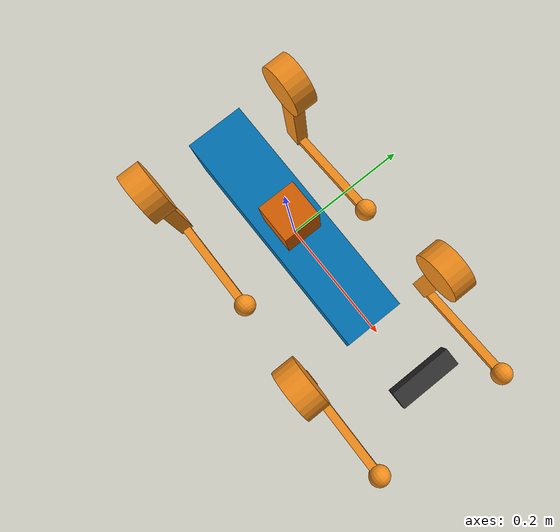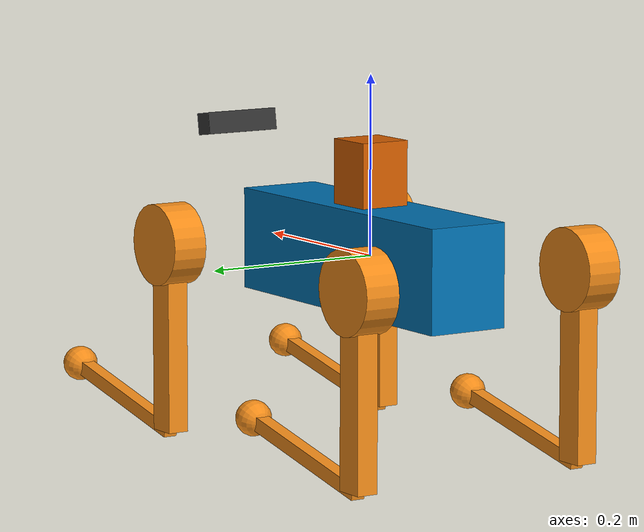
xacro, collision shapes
<?xml version="1.0"?>

<robot name="go2" xmlns:xacro="http://www.ros.org/wiki/xacro">

    <xacro:include filename="$(find go2_description)/xacro/const.xacro"/>
    <xacro:include filename="$(find go2_description)/xacro/materials.xacro"/>
    <xacro:include filename="$(find go2_description)/xacro/go2_leg.xacro"/>
    <!-- find-pkg-share -->

    <!-- Rotor related joint and link is only for demonstrate location. -->
    <!-- Actually, the rotor will rotate and the joint is not fixed. Reduction ratio should be considered. -->

    <xacro:include filename="$(find go2_description)/xacro/accessories.urdf.xacro" />
    <xacro:include filename="$(find go2_description)/xacro/camera.xacro" />

    <link name="base_link">
        <visual>
            <origin rpy="0 0 0" xyz="0 0 0"/>
            <geometry>
                <box size="0.001 0.001 0.001"/>
            </geometry>
        </visual>
    </link>

    <joint name="floating_base" type="fixed">
        <origin rpy="0 0 0" xyz="0 0 0"/>
        <parent link="base_link"/>
        <child link="trunk"/>
    </joint>

    <link name="trunk">
        <visual>
            <origin rpy="0 0 0" xyz="0 0 0"/>
            <geometry>
                <mesh filename="file://$(find go2_description)/meshes/trunk.dae" scale="1 1 1"/>
            </geometry>
        </visual>
        <collision>
            <origin rpy="0 0 0" xyz="0 0 0"/>
            <geometry>
                <box size="0.3762 0.0935 0.114"/>
            </geometry>
        </collision>
        <inertial>
            <origin rpy="0 0 0" xyz="${trunk_com_x} ${trunk_com_y} ${trunk_com_z}"/>
            <mass value="${trunk_mass}"/>
            <inertia
                ixx="${trunk_ixx}" ixy="${trunk_ixy}" ixz="${trunk_ixz}"
                iyy="${trunk_iyy}" iyz="${trunk_iyz}"
                izz="${trunk_izz}"/>
        </inertial>
    </link>

    <xacro:accessories
        base_name="base_link"
        base_length="0.3762"
        base_height="0.114"
    />

    <xacro:leg name="lf" mirror="1"  mirror_dae="True"   front_hind="1"  front_hind_dae="True"  />
    <xacro:leg name="rf" mirror="-1" mirror_dae= "False" front_hind="1"  front_hind_dae="True"  />
    <xacro:leg name="lh" mirror="1"  mirror_dae="True"   front_hind="-1" front_hind_dae="False" />
    <xacro:leg name="rh" mirror="-1" mirror_dae="False"  front_hind="-1" front_hind_dae="False" />

    <gazebo>
      <plugin name="p3d_base_controller" filename="libgazebo_ros_p3d.so">
        <ros>
            <argument>odom:=odom/ground_truth</argument>
        </ros>

        <body_name>base_link</body_name>
        <frame_name>world</frame_name>
        <update_rate>10.0</update_rate>
        <xyz_offset>0 0 0</xyz_offset>
        <rpy_offset>0 0 0</rpy_offset>
        <gaussian_noise>0.01</gaussian_noise>
    </plugin>
    </gazebo>

    <gazebo>
        <plugin filename="libgazebo_ros2_control.so" name="gazebo_ros2_control">
            <parameters>$(find go2_description)/config/go2_ros_control.yaml</parameters>
        </plugin>
    </gazebo>

</robot>

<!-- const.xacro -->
<robot name="go2" xmlns:xacro="http://www.ros.org/wiki/xacro">

    <!-- Constants for robot dimensions -->
    <xacro:property name="PI" value="3.1415926535897931"/>
    <xacro:property name="stick_mass" value="0.00001"/>

    <!-- simplified collision value -->
    <xacro:property name="trunk_width" value="0.0935"/>
    <xacro:property name="trunk_length" value="0.3762"/>
    <xacro:property name="trunk_height" value="0.114"/>
    <xacro:property name="hip_radius" value="0.046"/>
    <xacro:property name="hip_length" value="0.04"/>
    <xacro:property name="thigh_shoulder_radius" value="0.041"/>
    <xacro:property name="thigh_shoulder_length" value="0.032"/>
    <xacro:property name="thigh_width" value="0.0245"/>
    <xacro:property name="thigh_height" value="0.034"/>
    <xacro:property name="calf_width" value="0.016"/>
    <xacro:property name="calf_height" value="0.016"/>
    <xacro:property name="foot_radius" value="0.02"/>
    <xacro:property name="stick_radius" value="0.01"/>
    <xacro:property name="stick_length" value="0.2"/>

    <!-- kinematic value -->
    <xacro:property name="thigh_offset" value="0.0955"/>
    <xacro:property name="thigh_length" value="0.213"/>
    <xacro:property name="calf_length" value="0.213"/>

    <!-- leg offset from trunk center value -->
    <xacro:property name="leg_offset_x" value="0.1934"/>
    <xacro:property name="leg_offset_y" value="0.0465"/>
    <xacro:property name="hip_offset" value="0.0955"/>

    <!-- offset of link locations (left front) -->
    <xacro:property name="hip_offset_x" value="0.1934"/>
    <xacro:property name="hip_offset_y" value="0.0465"/>
    <xacro:property name="hip_offset_z" value="0.0"/>

    <xacro:property name="thigh_offset_x" value="0"/>
    <xacro:property name="thigh_offset_y" value="0.0955"/>
    <xacro:property name="thigh_offset_z" value="0.0"/>

    <xacro:property name="calf_offset_x" value="0.0"/>
    <xacro:property name="calf_offset_y" value="0.0"/>
    <xacro:property name="calf_offset_z" value="-0.213"/>

    <!-- joint limits -->
    <xacro:property name="damping" value="0.5"/>
    <xacro:property name="friction" value="0.5"/>
    <xacro:property name="hip_position_max" value="1.0472"/>
    <xacro:property name="hip_position_min" value="-1.0472"/>
    <xacro:property name="hip_velocity_max" value="1.5"/>
    <xacro:property name="hip_torque_max" value="23.7"/>
    <xacro:property name="thigh_position_max" value="3.4907"/>
    <xacro:property name="thigh_position_min" value="-1.5708"/>
    <xacro:property name="thigh_velocity_max" value="1.5"/>
    <xacro:property name="thigh_torque_max" value="23.7"/>
    <xacro:property name="calf_position_max" value="-0.83776"/>
    <xacro:property name="calf_position_min" value="-2.7227"/>
    <xacro:property name="calf_velocity_max" value="1.5"/>
    <xacro:property name="calf_torque_max" value="25"/>

    <!-- dynamics inertial value -->
    <!-- trunk -->
    <xacro:property name="trunk_mass" value="6.921"/>
    <xacro:property name="trunk_com_x" value="0.021112"/>
    <xacro:property name="trunk_com_y" value="0.00"/>
    <xacro:property name="trunk_com_z" value="-0.005366"/>
    <xacro:property name="trunk_ixx" value="0.01683"/>
    <xacro:property name="trunk_ixy" value="0.0"/>
    <xacro:property name="trunk_ixz" value="0.0"/>
    <xacro:property name="trunk_iyy" value="0.044483"/>
    <xacro:property name="trunk_iyz" value="0"/>
    <xacro:property name="trunk_izz" value="0.055683"/>
    <!-- hip (left front) -->
    <xacro:property name="hip_mass" value="0.678"/>
    <xacro:property name="hip_com_x" value="-0.0054"/>
    <xacro:property name="hip_com_y" value="0.00194"/>
    <xacro:property name="hip_com_z" value="-0.000105"/>
    <xacro:property name="hip_ixx" value="0.00048"/>
    <xacro:property name="hip_ixy" value="0.0"/>
    <xacro:property name="hip_ixz" value="0.0"/>
    <xacro:property name="hip_iyy" value="0.000884"/>
    <xacro:property name="hip_iyz" value="0.0"/>
    <xacro:property name="hip_izz" value="0.000596"/>

    <!-- thigh -->
    <xacro:property name="thigh_mass" value="0.552"/>
    <xacro:property name="thigh_com_x" value="-0.00374"/>
    <xacro:property name="thigh_com_y" value="-0.0223"/>
    <xacro:property name="thigh_com_z" value="-0.0327"/>
    <xacro:property name="thigh_ixx" value="0.00584"/>
    <xacro:property name="thigh_ixy" value="0.0"/>
    <xacro:property name="thigh_ixz" value="-0.0"/>
    <xacro:property name="thigh_iyy" value="0.0011"/>
    <xacro:property name="thigh_iyz" value="0.0"/>
    <xacro:property name="thigh_izz" value="3.29E-05"/>

    <!-- calf -->
    <xacro:property name="calf_mass" value="0.125"/>
    <xacro:property name="calf_com_x" value="0.00548"/>
    <xacro:property name="calf_com_y" value="-0.000975"/>
    <xacro:property name="calf_com_z" value="-0.115"/>
    <xacro:property name="calf_ixx" value="0.00108"/>
    <xacro:property name="calf_ixy" value="0"/>
    <xacro:property name="calf_ixz" value="0"/>
    <xacro:property name="calf_iyy" value="0.0011"/>
    <xacro:property name="calf_iyz" value="0"/>
    <xacro:property name="calf_izz" value="3.29E-05"/>

    <!-- foot -->
    <xacro:property name="foot_mass" value="0.006"/>

</robot>

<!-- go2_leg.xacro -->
<robot name="go2" xmlns:xacro="http://www.ros.org/wiki/xacro">

    <xacro:macro name="leg" params="name mirror mirror_dae front_hind front_hind_dae">

        <joint name="${name}_hip_joint" type="revolute">
            <xacro:if value="${(mirror_dae == False) and (front_hind_dae == True)}">
                <origin rpy="0 0 0" xyz="${leg_offset_x} ${-leg_offset_y} 0"/>
            </xacro:if>
            <xacro:if value="${(mirror_dae == True) and (front_hind_dae == True)}">
                <origin rpy="0 0 0" xyz="${leg_offset_x} ${leg_offset_y} 0"/>
            </xacro:if>
            <xacro:if value="${(mirror_dae == False) and (front_hind_dae == False)}">
                <origin rpy="0 0 0" xyz="${-leg_offset_x} ${-leg_offset_y} 0"/>
            </xacro:if>
            <xacro:if value="${(mirror_dae == True) and (front_hind_dae == False)}">
                <origin rpy="0 0 0" xyz="${-leg_offset_x} ${leg_offset_y} 0"/>
            </xacro:if>

            <parent link="trunk"/>
            <child link="${name}_hip_link"/>

            <axis xyz="1 0 0"/>
            <dynamics damping="${damping}" friction="${friction}"/>

            <xacro:if value="${(mirror_dae == True)}">
                <limit effort="${hip_torque_max}" velocity="${hip_velocity_max}" lower="${hip_position_min}" upper="${hip_position_max}"/>
            </xacro:if>
            <xacro:if value="${(mirror_dae == False)}">
                <limit effort="${hip_torque_max}" velocity="${hip_velocity_max}" lower="${-hip_position_max}" upper="${-hip_position_min}"/>
            </xacro:if>
        </joint>

        <link name="${name}_hip_link">
            <visual>
                <xacro:if value="${(mirror_dae == True) and (front_hind_dae == True)}">
                    <origin rpy="0 0 0" xyz="0 0 0"/>
                </xacro:if>
                <xacro:if value="${(mirror_dae == False) and (front_hind_dae == True)}">
                    <origin rpy="${PI} 0 0" xyz="0 0 0"/>
                </xacro:if>
                <xacro:if value="${(mirror_dae == True) and (front_hind_dae == False)}">
                    <origin rpy="0 ${PI} 0" xyz="0 0 0"/>
                </xacro:if>
                <xacro:if value="${(mirror_dae == False) and (front_hind_dae == False)}">
                    <origin rpy="${PI} ${PI} 0" xyz="0 0 0"/>
                </xacro:if>
                <geometry>
                    <mesh filename="file://$(find go2_description)/meshes/hip.dae" scale="1 1 1"/>
                </geometry>
                <material name="orange"/>
                <material>
                    <color rgba="${255/255} ${108/255} ${10/255} 1.0"/>
                </material>
            </visual>
            <collision>
                <origin rpy="${PI/2.0} 0 0" xyz="0 ${hip_offset*mirror} 0"/>
                <geometry>
                    <cylinder length="${hip_length}" radius="${hip_radius}"/>
                </geometry>
            </collision>
            <inertial>
                <origin rpy="0 0 0" xyz="${hip_com_x*front_hind} ${hip_com_y*mirror} ${hip_com_z}"/>
                <mass value="${hip_mass}"/>
                <inertia
                    ixx="${hip_ixx}" ixy="${hip_ixy*mirror*front_hind}" ixz="${hip_ixz*front_hind}"
                    iyy="${hip_iyy}" iyz="${hip_iyz*mirror}"
                    izz="${hip_izz}"/>
            </inertial>
        </link>

        <joint name="${name}_upper_leg_joint" type="revolute">
            <origin rpy="0 0 0" xyz="0 ${thigh_offset*mirror} 0"/>
            <parent link="${name}_hip_link"/>
            <child link="${name}_upper_leg_link"/>
            <axis xyz="0 1 0"/>
            <dynamics damping="${damping}" friction="${friction}"/>
            <limit effort="${thigh_torque_max}" velocity="${thigh_velocity_max}" lower="${thigh_position_min}" upper="${thigh_position_max}"/>
        </joint>

        <link name="${name}_upper_leg_link">
            <visual>
                <origin rpy="0 0 0" xyz="0 0 0"/>
                <geometry>
                    <xacro:if value="${mirror_dae == True}">
                        <mesh filename="file://$(find go2_description)/meshes/thigh.dae" scale="1 1 1"/>
                    </xacro:if>
                    <xacro:if value="${mirror_dae == False}">
                        <mesh filename="file://$(find go2_description)/meshes/thigh_mirror.dae" scale="1 1 1"/>
                    </xacro:if>
                </geometry>
                <material name="orange"/>
            </visual>
            <collision>
                <origin rpy="0 ${PI/2.0} 0" xyz="0 0 ${-thigh_length/2.0}"/>
                <geometry>
                    <box size="${thigh_length} ${thigh_width} ${thigh_height}"/>
                </geometry>
            </collision>
            <inertial>
                <origin rpy="0 0 0" xyz="${thigh_com_x} ${thigh_com_y*mirror} ${thigh_com_z}"/>
                <xacro:if value="${front_hind == -1}">
                    <mass value=".5"/>
                </xacro:if>
                <xacro:if value="${front_hind == 1}">
                    <mass value="${thigh_mass}"/>
                </xacro:if>
                <inertia
                    ixx="${thigh_ixx}" ixy="${thigh_ixy*mirror}" ixz="${thigh_ixz}"
                    iyy="${thigh_iyy}" iyz="${thigh_iyz*mirror}"
                    izz="${thigh_izz}"/>
            </inertial>
        </link>

        <joint name="${name}_lower_leg_joint" type="revolute">
            <origin rpy="0 0 0" xyz="0 0 ${-thigh_length}"/>
            <parent link="${name}_upper_leg_link"/>
            <child link="${name}_lower_leg_link"/>
            <axis xyz="0 1 0"/>
            <dynamics damping="${damping}" friction="${friction}"/>
            <limit effort="${calf_torque_max}" velocity="${calf_velocity_max}" lower="${calf_position_min}" upper="${calf_position_max}"/>
        </joint>

        <link name="${name}_lower_leg_link">
            <visual>
                <origin rpy="0 0 0" xyz="0 0 0"/>
                <geometry>
                    <mesh filename="file://$(find go2_description)/meshes/calf.dae" scale="1 1 1"/>
                </geometry>
                <material name="orange"/>
            </visual>
            <collision>
                <origin rpy="0 ${PI/2.0} 0" xyz="0 0 ${-calf_length/2.0}"/>
                <geometry>
                    <box size="${calf_length} ${calf_width} ${calf_height}"/>
                </geometry>
            </collision>
            <inertial>
                <origin rpy="0 0 0" xyz="${calf_com_x} ${calf_com_y} ${calf_com_z}"/>
                <mass value="${calf_mass}"/>
                <inertia
                    ixx="${calf_ixx}" ixy="${calf_ixy}" ixz="${calf_ixz}"
                    iyy="${calf_iyy}" iyz="${calf_iyz}"
                    izz="${calf_izz}"/>
            </inertial>
        </link>

        <joint name="${name}_foot_joint" type="fixed">0
            <origin rpy="0 0 0" xyz="0 0 ${-(calf_length)}"/>
            <parent link="${name}_lower_leg_link"/>
            <child link="${name}_foot_link"/>
        </joint>

        <link name="${name}_foot_link">
            <visual>
                <origin rpy="0 0 0" xyz="0 0 0"/>
                <geometry>
                    <sphere radius="${foot_radius-0.01}"/>
                </geometry>
                <material name="orange"/>
            </visual>
            <collision>
                <origin rpy="0 0 0" xyz="0 0 0"/>
                <geometry>
                    <sphere radius="${foot_radius}"/>
                </geometry>
            </collision>
            <inertial>
                <mass value="${foot_mass}"/>
                <inertia
                    ixx="${(2*foot_mass)/5.0*(foot_radius*foot_radius)}" ixy="0.0" ixz="0.0"
                    iyy="${(2*foot_mass)/5.0*(foot_radius*foot_radius)}" iyz="0.0"
                    izz="${(2*foot_mass)/5.0*(foot_radius*foot_radius)}"/>
            </inertial>
        </link>

        <ros2_control name="${name}" type="system">
            <hardware>
                <plugin>gazebo_ros2_control/GazeboSystem</plugin>
            </hardware>
            <joint name="${name}_hip_joint">
                <command_interface name="effort"/>
                <state_interface name="position"/>
                <state_interface name="velocity"/>
            </joint>
            <joint name="${name}_upper_leg_joint">
                <command_interface name="effort"/>
                <state_interface name="position"/>
                <state_interface name="velocity"/>
            </joint>
            <joint name="${name}_lower_leg_joint">
                <command_interface name="effort"/>
                <state_interface name="position"/>
                <state_interface name="velocity"/>
            </joint>
        </ros2_control>

        <!-- RR leg -->
        <gazebo reference="${name}_hip_link">
            <mu1>0.2</mu1>
            <mu2>0.2</mu2>
        </gazebo>
        <gazebo reference="${name}_upper_leg_link">
            <mu1>0.2</mu1>
            <mu2>0.2</mu2>
            <self_collide>1</self_collide>
            <kp  value="1000000.0"/>
            <kd  value="1.0"/>
        </gazebo>
        <gazebo reference="${name}_lower_leg_link">
            <mu1>0.2</mu1>
            <mu2>0.2</mu2>
            <self_collide>1</self_collide>
        </gazebo>
        <gazebo reference="${name}_foot_link">
            <kp>10000000000.0</kp>
            <kd>100.0</kd>
            <mu1>0.8</mu1>
            <mu2>0.8</mu2>
            <minDepth>0.05</minDepth>
            <material>Gazebo/FlatBlack</material>
        </gazebo>
    </xacro:macro>
</robot>

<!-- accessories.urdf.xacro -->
<robot xmlns:xacro="http://ros.org/wiki/xacro">
    <xacro:macro name="accessories" params="base_name base_length base_height  " >

        <xacro:include filename="$(find go2_description)/xacro/hokuyo_utm30lx.urdf.xacro" />

        <!-- hls_lfcd_lds -->
        <xacro:hokuyo_utm30lx
            name="hokuyo"
            parent="${base_name}"
            ros_topic="scan"
            update_rate="5"
            ray_count="360"
            min_angle="0"
            max_angle="360" >
            <origin xyz="0.0 0.0 ${base_height / 2 + 0.04}" rpy="0 0 0"/>
        </xacro:hokuyo_utm30lx>

        <link name="imu_link">
            <inertial>
                <mass value="0.001"/>
                <origin xyz="0 0 0" rpy="0 0 0"/>
                <inertia ixx="1e-09" ixy="0.0" ixz="0.0" iyy="1e-09" iyz="0.0" izz="1e-09"/>
            </inertial>

        </link>
        <joint name="imu_joint" type="fixed">
            <parent link="${base_name}" />
            <child link="imu_link" />
        </joint>

        <gazebo reference="imu_link">
                <sensor name="imu_controller" type="imu">
                    <always_on>true</always_on>
                    <update_rate>50</update_rate>
                    <plugin name="gazebo_ros_imu_sensor" filename="libgazebo_ros_imu_sensor.so">
                        <ros>
                            <namespace>/imu</namespace>
                            <remapping>~/out:=data</remapping>
                        </ros>
                    </plugin>
                </sensor>
            </gazebo>
    </xacro:macro>
</robot>

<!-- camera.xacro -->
<robot name="go2" xmlns:xacro="http://www.ros.org/wiki/xacro">

  <!-- Include base GO2 description from upstream -->
  <!-- xacro:include filename="$(find go2_description)/xacro/go2_base.xacro"/ -->

  <!-- RGB-D Camera — mounted on GO2 head -->

  <link name="camera_link">
    <visual>
      <origin xyz="0 0 0" rpy="0 0 0"/>
      <geometry>
        <box size="0.025 0.09 0.025"/>
      </geometry>
      <material name="dark_grey">
        <color rgba="0.2 0.2 0.2 1.0"/>
      </material>
    </visual>
    <collision>
      <origin xyz="0 0 0" rpy="0 0 0"/>
      <geometry>
        <box size="0.025 0.09 0.025"/>
      </geometry>
    </collision>
    <inertial>
      <mass value="0.072"/>
      <origin xyz="0 0 0" rpy="0 0 0"/>
      <inertia ixx="1e-6" ixy="0" ixz="0" iyy="1e-6" iyz="0" izz="1e-6"/>
    </inertial>
  </link>

  <!-- Mount camera on head / trunk_link — adjust xyz to match GO2 head position -->
  <joint name="camera_joint" type="fixed">
    <parent link="trunk"/>   <!-- Change to correct GO2 base link name -->
    <child link="camera_link"/>
    <!-- Position: front of robot, at head height, facing forward -->
    <origin xyz="0.28 0.0 0.12" rpy="0 0.15 0"/>
  </joint>

  <!-- Optical frame (ROS convention: z forward, x right, y down) -->
  <link name="camera_color_optical_frame"/>
  <joint name="camera_color_optical_joint" type="fixed">
    <parent link="camera_link"/>
    <child link="camera_color_optical_frame"/>
    <origin xyz="0 0 0" rpy="-1.5708 0 -1.5708"/>
  </joint>

  <link name="camera_depth_optical_frame"/>
  <joint name="camera_depth_optical_joint" type="fixed">
    <parent link="camera_link"/>
    <child link="camera_depth_optical_frame"/>
    <origin xyz="0 0 0" rpy="-1.5708 0 -1.5708"/>
  </joint>

  <!-- Depth camera sensor — requires LIBGL_DRI3_DISABLE=1 passed to gzserver via gazebo_launch.py for OGRE to init correctly. -->
  <gazebo reference="camera_link">
    <sensor type="depth" name="go2_camera">
      <always_on>true</always_on>
      <update_rate>15</update_rate>
      <visualize>false</visualize>
      <camera>
        <horizontal_fov>1.047</horizontal_fov>
        <image>
          <width>640</width>
          <height>480</height>
          <format>R8G8B8</format>
        </image>
        <clip>
          <near>0.1</near>
          <far>8.0</far>
        </clip>
      </camera>
      <plugin name="go2_camera_plugin" filename="libgazebo_ros_camera.so">
        <ros>
          <namespace>/go2</namespace>
          <remapping>image_raw:=camera/image_raw</remapping>
          <remapping>image_depth:=camera/depth/image_raw</remapping>
          <remapping>camera_info:=camera/camera_info</remapping>
          <remapping>depth_camera_info:=camera/depth/camera_info</remapping>
        </ros>
        <camera_name>camera</camera_name>
        <frame_name>camera_color_optical_frame</frame_name>
        <min_depth>0.1</min_depth>
        <max_depth>8.0</max_depth>
      </plugin>
    </sensor>
  </gazebo>

</robot>

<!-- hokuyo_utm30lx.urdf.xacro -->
<robot xmlns:xacro="http://www.ros.org/wiki/xacro">
    <xacro:property name="M_PI" value="3.1415926535897931" />

    <xacro:macro name="hokuyo_utm30lx_model" params="name parent *origin">
      <joint name="${name}_joint" type="fixed">
        <xacro:insert_block name="origin" />
        <parent link="${parent}"/>
        <child link="${name}_frame"/>
      </joint>

      <link name="${name}_frame">
        <inertial>
          <mass value="0.270" />
          <origin xyz="0 0 0" rpy="0 0 0" />
          <inertia ixx="2.632e-4" ixy="0" ixz="0" iyy="2.632e-4" iyz="0" izz="1.62e-4" />
        </inertial>
        <visual>
          <origin xyz="0 0 0" rpy="0 0 0" />
          <geometry>
          <mesh filename="file://$(find go2_description)/meshes/hokuyo_utm_30lx$(optenv TEST_SELF_FILTER).dae"/>
        </geometry>
        </visual>
        <collision>
          <origin xyz="0 0 -0.0115" rpy="0 0 0" />
          <geometry>
          <box size="0.058 0.058 0.087" />
        </geometry>
        </collision>
      </link>
    </xacro:macro>

    <xacro:macro name="hokuyo_utm30lx" params="name parent *origin ros_topic update_rate ray_count min_angle max_angle">
      <xacro:hokuyo_utm30lx_model name="${name}" parent="${parent}">
        <xacro:insert_block name="origin" />
      </xacro:hokuyo_utm30lx_model>

      <gazebo reference="${name}_frame">
        <sensor type="ray" name="${name}">
          <always_on>true</always_on>
          <update_rate>${update_rate}</update_rate>
          <pose>0 0 0 0 0 0</pose>
          <visualize>false</visualize>
          <ray>
            <scan>
              <horizontal>
                <samples>${ray_count}</samples>
                <resolution>1</resolution>
                <min_angle>${min_angle * M_PI/180}</min_angle>
                <max_angle>${max_angle * M_PI/180}</max_angle>
              </horizontal>
            </scan>
            <range>
              <min>0.2</min>
              <max>30.0</max>
              <resolution>0.01</resolution>
            </range>
            <noise>
              <type>gaussian</type>
              <mean>0.0</mean>
              <stddev>0.004</stddev>
            </noise>
          </ray>
          <plugin name="gazebo_ros_${name}_controller" filename="libgazebo_ros_ray_sensor.so">
            <ros>
              <remapping>~/out:=${ros_topic}</remapping>
            </ros>
            <output_type>sensor_msgs/LaserScan</output_type>
            <!-- Explicit frame_name ensures scan.frame_id = hokuyo_frame (not base_link) -->
            <frame_name>${name}_frame</frame_name>
            <min_intensity>100.0</min_intensity>
          </plugin>
        </sensor>
      </gazebo>
    </xacro:macro>

    <!-- GPU ray variant (unused): hokuyo_utm30lx_gpu macro omitted — use hokuyo_utm30lx with type="ray" above -->
</robot>
